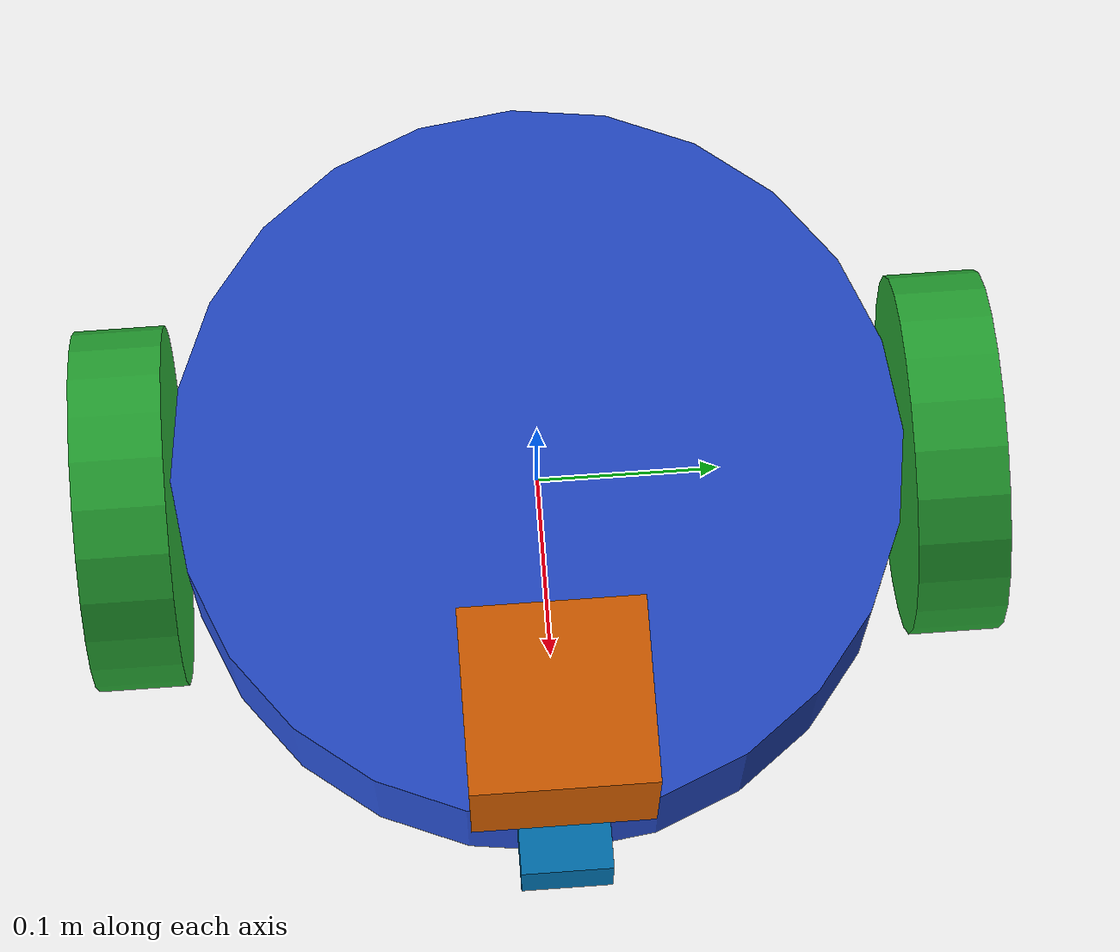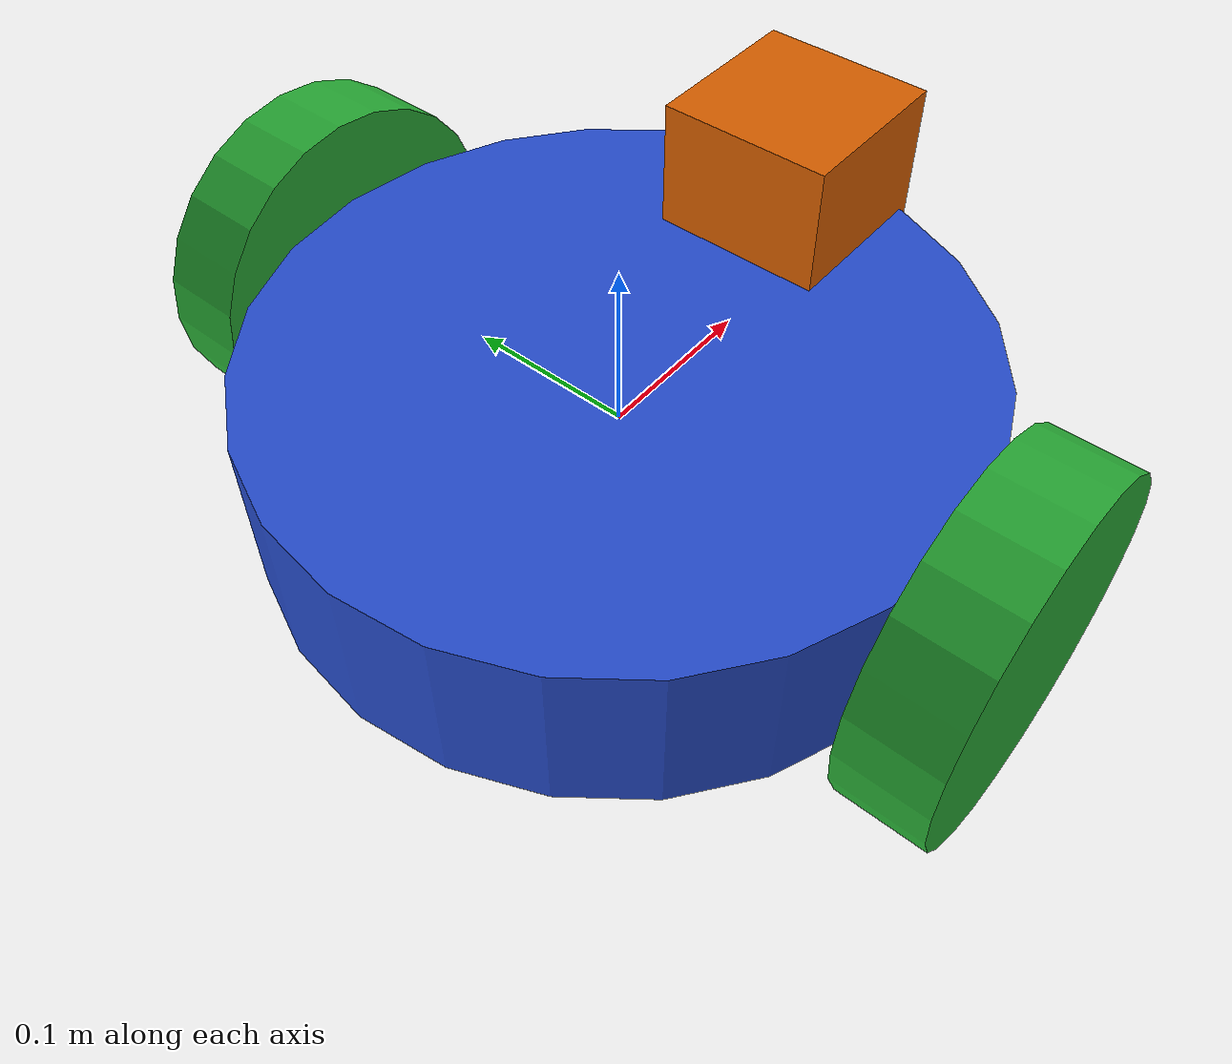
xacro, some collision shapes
<?xml version="1.0" ?>

<robot name="circular_robot" xmlns:xacro="http://www.ros.org/wiki/xacro">

    <xacro:include filename="$(find my_robot)/urdf/my_robot.gazebo" />

    <link name="robot_footprint"></link>

    <joint name="robot_footprint_joint" type="fixed">
        <origin xyz="0 0 0" rpy="0 0 0" />
        <parent link="robot_footprint" />
        <child link="chassis" />
    </joint>

    <link name="chassis">
        <pose>0 0 0.1 0 0 0</pose>

        <inertial>
            <mass value="15.0" />
            <origin xyz="0.0 0 0" rpy=" 0 0 0" />
            <inertia ixx="0.1" ixy="0" ixz="0" iyy="0.1" iyz="0" izz="0.1" />
        </inertial>

        <visual name="chassis_visual">
            <origin xyz="0 0 0" rpy=" 0 0 0" />
            <geometry>
                <cylinder radius="0.2" length="0.1" />
            </geometry>
        </visual>

        <collision name="chassis_collision">
            <origin xyz="0 0 0" rpy=" 0 0 0" />
            <geometry>
                <cylinder radius="0.2" length="0.1" />
            </geometry>
        </collision>

        <collision name="front_caster_collision">
            <origin xyz="0.1 0 -0.05" rpy=" 0 0 0" />
            <geometry>
                <sphere radius="0.0499" />
            </geometry>
        </collision>

        <visual name="front_caster_visual">
            <origin xyz="0.1 0 -0.05" rpy=" 0 0 0" />
            <geometry>
                <sphere radius="0.05" />
            </geometry>
        </visual>

        <collision name="back_caster_collision">
            <origin xyz="-0.1 0 -0.05" rpy=" 0 0 0" />
            <geometry>
                <sphere radius="0.0499" />
            </geometry>
        </collision>

        <visual name="back_caster_visual">
            <origin xyz="-0.1 0 -0.05" rpy=" 0 0 0" />
            <geometry>
                <sphere radius="0.05" />
            </geometry>
        </visual>
    </link>

    <gazebo reference="chassis">
        <material>Gazebo/Blue</material>
    </gazebo>

    <!-- #region left wheel -->
    <link name="left_wheel">
        <inertial>
            <mass value="5.0" />
            <origin xyz="0.0 0.0 0.0" rpy="0.0 1.5707 1.5707" />
            <inertia ixx="0.1" ixy="0" ixz="0" iyy="0.1" iyz="0" izz="0.1" />
        </inertial>

        <collision>
            <origin xyz="0.0 0.0 0.0" rpy="0.0 1.5707 1.5707" />
            <geometry>
                <cylinder radius="0.1" length="0.05" />
            </geometry>
        </collision>

        <visual>
            <origin xyz="0.0 0.0 0.0" rpy="0.0 1.5707 1.5707" />
            <geometry>
                <cylinder radius="0.1" length="0.05" />
            </geometry>
        </visual>
    </link>

    <joint type="continuous" name="left_wheel_hinge">
        <origin xyz="0 0.225 0" rpy="0 0 0" />
        <child link="left_wheel" />
        <parent link="chassis" />
        <axis xyz="0 1 0" rpy="0 0 0" />
        <limit effort="10000" velocity="1000" />
        <dynamics damping="1.0" friction="1.0" />
    </joint>

    <gazebo reference="left_wheel">
        <material>Gazebo/Green</material>
    </gazebo>
    <!-- #endregion left wheel -->

    <!-- #region right wheel -->
    <link name="right_wheel">
        <inertial>
            <mass value="5.0" />
            <origin xyz="0.0 0.0 0.0" rpy="0.0 1.5707 1.5707" />
            <inertia ixx="0.1" ixy="0" ixz="0" iyy="0.1" iyz="0" izz="0.1" />
        </inertial>

        <collision>
            <origin xyz="0.0 0.0 0.0" rpy="0.0 1.5707 1.5707" />
            <geometry>
                <cylinder radius="0.1" length="0.05" />
            </geometry>
        </collision>

        <visual>
            <origin xyz="0.0 0.0 0.0" rpy="0.0 1.5707 1.5707" />
            <geometry>
                <cylinder radius="0.1" length="0.05" />
            </geometry>
        </visual>
    </link>

    <joint type="continuous" name="right_wheel_hinge">
        <origin xyz="0 -0.225 0" rpy="0 0 0" />
        <child link="right_wheel" />
        <parent link="chassis" />
        <axis xyz="0 1 0" rpy="0 0 0" />
        <limit effort="10000" velocity="1000" />
        <dynamics damping="1.0" friction="1.0" />
    </joint>

    <gazebo reference="right_wheel">
        <material>Gazebo/Green</material>
    </gazebo>
    <!-- #endregion right wheel -->

    <!-- #region camera -->
    <link name="camera">
        <inertial>
            <mass value="0.1" />
            <origin xyz="0 0 0" rpy="0 0 0" />
            <inertia ixx="1e-6" ixy="0" ixz="0" iyy="1e-6" iyz="0" izz="1e-6" />
            <box_inertia m="0.1" x="0.05" y="0.05" z="0.05" />
        </inertial>

        <collision>
            <origin xyz="0 0 0" rpy="0 0 0" />
            <geometry>
                <box size="0.05 0.05 0.05" />
            </geometry>
        </collision>

        <visual>
            <origin xyz="0 0 0" rpy="0 0 0" />
            <geometry>
                <box size="0.05 0.05 0.05" />
            </geometry>
        </visual>
    </link>

    <joint type="fixed" name="camera_joint">
        <origin xyz="0.2 0 0" rpy="0 0 0" />
        <child link="camera" />
        <parent link="chassis" />
        <axis xyz="0 1 0" rpy="0 0 0" />
    </joint>
    <!-- #endregion camera -->

    <link name="hokuyo">
        <intertial>
            <mass value="1e-5" />
            <origin xyz="0 0 0" rpy="0 0 0" />
            <inertia ixx="1e-6" ixy="0" ixz="0" iyy="1e-6" iyz="0" izz="1e-6" />
        </intertial>

        <collision>
            <origin xyz="0 0 0" rpy="0 0 0" />
            <geometry>
                <box size="0.1 0.1 0.1" />
            </geometry>
        </collision>

        <visual>
            <origin xyz="0 0 0" rpy="0 0 0" />
            <geometry>
                <mesh filename="package://my_robot/meshes/hokuyo.dae" />
            </geometry>
        </visual>
    </link>

    <joint type="fixed" name="hokuyo_joint">
        <origin xyz="0.15 0 0.075" rpy="0 0 0" />
        <child link="hokuyo" />
        <parent link="chassis" />
        <axis xyz="0 1 0" rpy="0 0 0" />
    </joint>
</robot>
